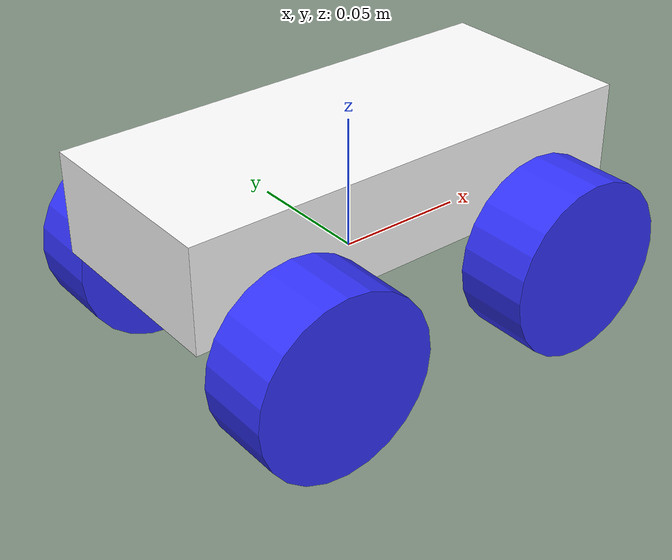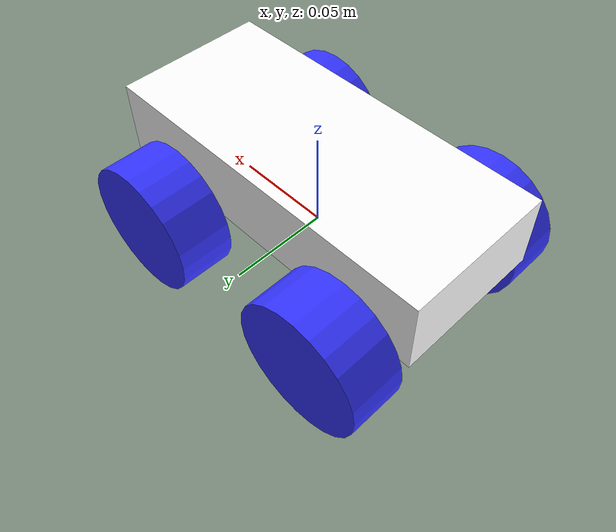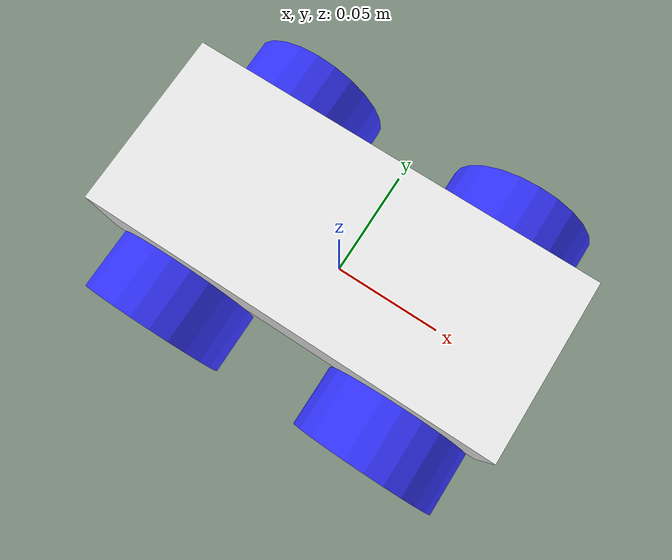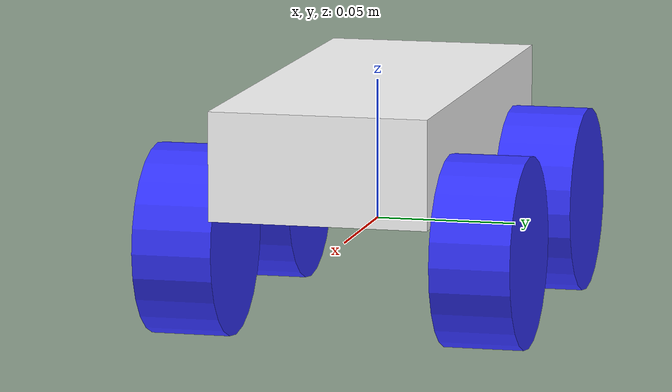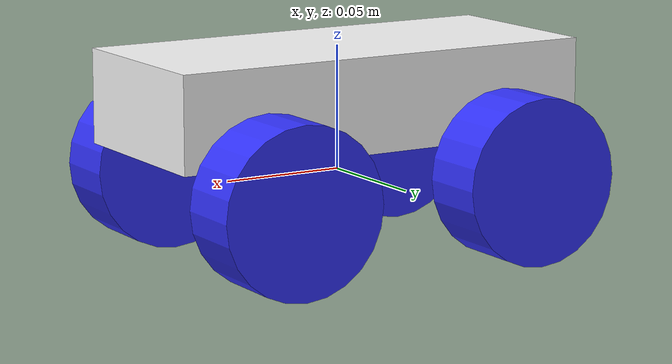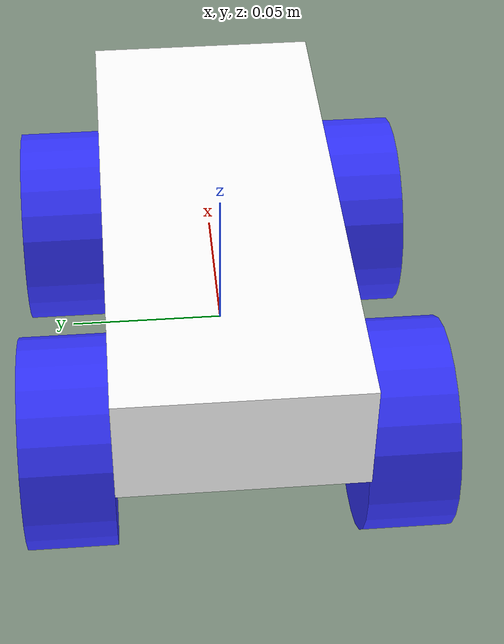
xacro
<?xml version="1.0"?>
<robot xmlns:xacro="http://www.ros.org/wiki/xacro" >

    <xacro:include filename="interial_macros.xacro"/>

    <material name="white">
        <color rgba="1 1 1 1" />
    </material>

    <material name="orange">
        <color rgba="1 0.3 0.1 1"/>
    </material>

    <material name="blue">
        <color rgba="0.2 0.2 1 1"/>
    </material>

    <material name="ABS">
        <color rgba="0 0 0 1"/>
    </material>

    <!-- BASE LINK -->

    <link name="base_link">

    </link>

    <!-- CHASSIS LINK -->

    <joint name="chassis_joint" type="fixed">
        <parent link="base_link"/>
        <child link="chassis"/>
        <origin xyz="0 0 0"/>
    </joint>

    <link name="chassis">
        <visual>
            <origin xyz="0 0 0.032"/>
            <geometry>
                <box size="0.178 0.0763 0.038"/>
            </geometry>
            <material name="white"/>
        </visual>
        <collision>
            <origin xyz="0 0 0.032"/>
            <geometry>
                <box size="0.178 0.0763 0.038"/>
            </geometry>
        </collision>
        <xacro:inertial_box mass="1" x="0.178" y=".0763" z="0.038">
            <origin xyz="0 0 0.032" rpy="0 0 0 "/>
        </xacro:inertial_box>
    </link>

    <!-- Front Left Wheel Link-->

    <joint name="front_left_wheel_joint" type="continuous">
        <parent link="base_link"/>
        <child link="front_left_wheel"/>
        <origin xyz=".0535 0.05215 0" rpy="-${pi/2} 0 0"/>
        <axis xyz="0 0 1"/>
    </joint>

    <link name="front_left_wheel">
        <visual>
            <geometry>
                <cylinder radius=".0335" length=".028"/>
            </geometry>
            <material name="blue"/>
        </visual>
        <collision>
            <geometry>
                <cylinder radius=".0335" length=".028"/>
            </geometry>
        </collision>
        <xacro:inertial_cylinder mass="0.1" length="0.028" radius="0.0335">
            <origin xyz="0 0 0" rpy="0 0 0"/>
        </xacro:inertial_cylinder>
    </link>

    <!-- Front Right Wheel Link-->

    <joint name="front_right_wheel_joint" type="continuous">
        <parent link="base_link"/>
        <child link="front_right_wheel"/>
        <origin xyz=".0535 -0.05215 0" rpy="${pi/2} 0 0"/>
        <axis xyz="0 0 -1"/>
    </joint>

    <link name="front_right_wheel">
        <visual>
            <geometry>
                <cylinder radius=".0335" length=".028"/>
            </geometry>
            <material name="blue"/>
        </visual>
        <collision>
            <geometry>
                <cylinder radius=".0335" length=".028"/>
            </geometry>
        </collision>
        <xacro:inertial_cylinder mass="0.1" length="0.028" radius="0.0335">
            <origin xyz="0 0 0" rpy="0 0 0"/>
        </xacro:inertial_cylinder>
    </link>

    <!-- Back Left Wheel Link-->

    <joint name="back_left_wheel_joint" type="continuous">
        <parent link="base_link"/>
        <child link="back_left_wheel"/>
        <origin xyz="-.0535 0.05215 0" rpy="-${pi/2} 0 0"/>
        <axis xyz="0 0 1"/>
    </joint>

    <link name="back_left_wheel">
        <visual>
            <geometry>
                <cylinder radius=".0335" length=".028"/>
            </geometry>
            <material name="blue"/>
        </visual>
        <collision>
            <geometry>
                <cylinder radius=".0335" length=".028"/>
            </geometry>
        </collision>
        <xacro:inertial_cylinder mass="0.1" length="0.028" radius="0.0335">
            <origin xyz="0 0 0" rpy="0 0 0"/>
        </xacro:inertial_cylinder>
    </link>

    <!-- Front Right Wheel Link-->

    <joint name="back_right_wheel_joint" type="continuous">
        <parent link="base_link"/>
        <child link="back_right_wheel"/>
        <origin xyz="-.0535 -0.05215 0" rpy="${pi/2} 0 0"/>
        <axis xyz="0 0 -1"/>
    </joint>

    <link name="back_right_wheel">
        <visual>
            <geometry>
                <cylinder radius=".0335" length=".028"/>
            </geometry>
            <material name="blue"/>
        </visual>
        <collision>
            <geometry>
                <cylinder radius=".0335" length=".028"/>
            </geometry>
        </collision>
        <xacro:inertial_cylinder mass="0.1" length="0.028" radius="0.0335">
            <origin xyz="0 0 0" rpy="0 0 0"/>
        </xacro:inertial_cylinder>
    </link>

</robot>
